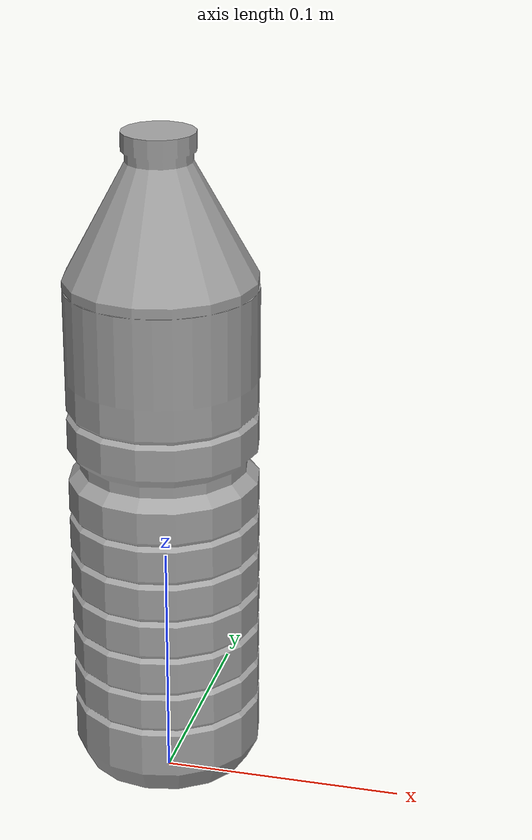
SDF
<?xml version="1.0" ?>
<sdf version="1.0">
  <model name="bottle">
    <static>true</static>
    <link name="body">
      <visual name="visual">
        <geometry>
          <mesh><uri>model://bottle/model.dae</uri></mesh>
        </geometry>
      </visual>
    </link>
  </model>
</sdf>
